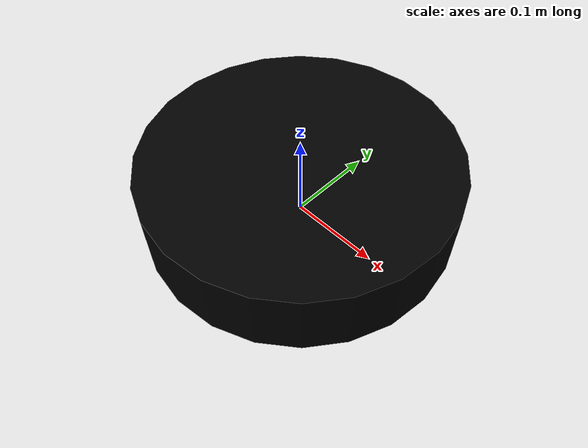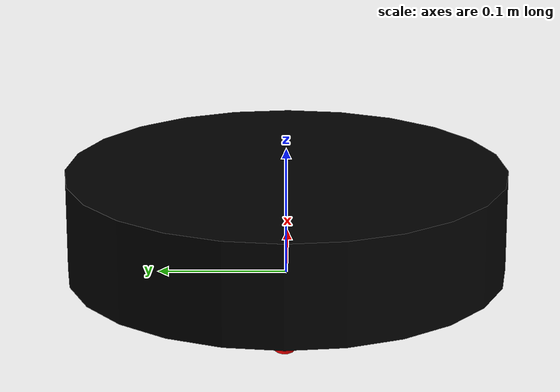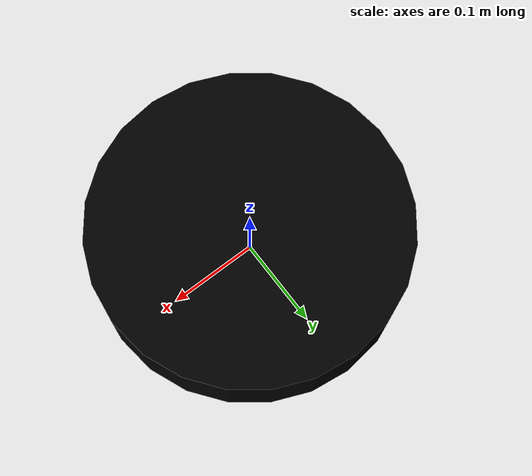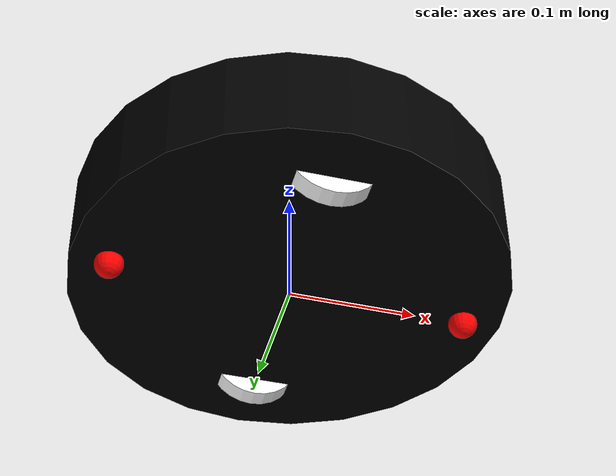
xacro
<?xml version="1.0"?>
<robot xmlns:xacro="http://www.ros.org/wiki/xacro">

    <xacro:include filename="inertial_macros.xacro"/>

    <material name="black">
        <color rgba="0 0 0 1"/>
    </material>

    <material name="white">
        <color rgba="1 1 1 1"/>
    </material>

    <material name="red">
        <color rgba="1 0 0 1"/>
    </material>

    <material name="green">
        <color rgba="0 1 0 1"/>
    </material>

    <xacro:property name="wheel_radius" value="0.035"/>

    <!-- BASE LINK -->
    <link name="base_link">
    </link>

    <!-- BASE_FOOTPRINT LINK -->
    <joint name="base_footprint_joint" type="fixed">
        <parent link="base_link"/>
        <child link="base_footprint"/>
        <origin rpy="0 0 0" xyz="0 0 0"/>
    </joint>

    <link name="base_footprint">
    </link>

    <!-- CHASSIS LINK -->
    <joint name="chassis_joint" type="fixed">
        <parent link="base_link"/>
        <child link="chassis"/>
        <origin rpy="0 0 0" xyz="0 0 0"/>
    </joint>

    <link name="chassis">
        <visual>
          <origin rpy="0 0 0" xyz="0 0 0.043"/>
          <geometry>
            <cylinder length="0.08" radius="0.171"/>
          </geometry>
          <material name="black"/>
        </visual>
        <collision>
          <origin rpy="0 0 0" xyz="0 0 0.043"/>
          <geometry>
            <cylinder length="0.08" radius="0.171"/>
          </geometry>
        </collision>
        <xacro:inertial_cylinder mass="3.6" length="0.08" radius="0.171">
            <origin rpy="0 0 0" xyz="0 0 0.043"/>
        </xacro:inertial_cylinder>
    </link>

    <gazebo reference="chassis">
        <material>Gazebo/Black</material>
    </gazebo>

    <!-- LEFT WHEEL LINK -->

    <joint name="left_wheel_joint" type="continuous">
        <parent link="base_link"/>
        <child link="left_wheel"/>
        <origin rpy="-${pi/2} 0 0" xyz="0 0.12 ${wheel_radius - 0.0114}"/>
        <axis xyz="0 0 1"/>
    </joint>

    <link name="left_wheel">
        <visual>
            <geometry>
                <cylinder length="0.0147" radius="${wheel_radius}"/>
            </geometry>
            <material name="white"/>
        </visual>
        <collision>
            <geometry>
                <cylinder length="0.0147" radius="${wheel_radius}"/>
            </geometry>
        </collision>
        <xacro:inertial_cylinder mass="0.1" length="0.0147" radius="${wheel_radius}">
            <origin rpy="0 0 0" xyz="0 0 0"/>
        </xacro:inertial_cylinder>
    </link>
    <gazebo reference="left_wheel">
        <material>Gazebo/White</material>
    </gazebo>

    <!-- RIGHT WHEEL LINK -->
    <joint name="right_wheel_joint" type="continuous">
        <parent link="base_link"/>
        <child link="right_wheel"/>
        <origin rpy="${pi/2} 0 0" xyz="0 -0.12 ${wheel_radius - 0.0114}"/>
        <axis xyz="0 0 -1"/>
    </joint>

    <link name="right_wheel">
        <visual>
            <geometry>
                <cylinder length="0.0147" radius="${wheel_radius}"/>
            </geometry>
            <material name="white"/>
        </visual>
        <collision>
            <geometry>
                <cylinder length="0.0147" radius="${wheel_radius}"/>
            </geometry>
        </collision>
        <xacro:inertial_cylinder mass="0.1" length="0.0147" radius="${wheel_radius}">
            <origin rpy="0 0 0" xyz="0 0 0"/>
        </xacro:inertial_cylinder>
    </link>
    <gazebo reference="right_wheel">
        <material>Gazebo/White</material>
    </gazebo>

    <!-- FRONT CASTER WHEEL LINK -->
    <joint name="caster_wheel_joint" type="fixed">
        <parent link="chassis"/>
        <child link="caster_wheel"/>
        <origin xyz="0.14 0 0"/>
    </joint>

    <link name="caster_wheel">
        <visual>
            <geometry>
                <sphere radius="0.0114"/>
            </geometry>
            <material name="red"/>
        </visual>
        <collision>
            <geometry>
                <sphere radius="0.0114"/>
            </geometry>
        </collision>
        <xacro:inertial_sphere mass="0.1" radius="0.0114">
            <origin rpy="0 0 0" xyz="0 0 0"/>
        </xacro:inertial_sphere>
    </link>

    <gazebo reference="caster_wheel">
        <material>Gazebo/Red</material>
        <mu1 value="0.001"/>
        <mu2 value="0.001"/>
    </gazebo>

    <!-- BACK CASTER WHEEL LINK (Real robot does not have this, only for simulation purposes) -->
    <joint name="back_caster_wheel_joint" type="fixed">
        <parent link="chassis"/>
        <child link="back_caster_wheel"/>
        <origin xyz="-0.14 0 0"/>
    </joint>

    <link name="back_caster_wheel">
        <visual>
            <geometry>
                <sphere radius="0.0114"/>
            </geometry>
            <material name="red"/>
        </visual>
        <collision>
            <geometry>
                <sphere radius="0.0114"/>
            </geometry>
        </collision>
        <xacro:inertial_sphere mass="0.1" radius="0.0114">
            <origin rpy="0 0 0" xyz="0 0 0"/>
        </xacro:inertial_sphere>
    </link>

    <gazebo reference="back_caster_wheel">
        <material>Gazebo/Red</material>
        <mu1 value="0.001"/>
        <mu2 value="0.001"/>
    </gazebo>

</robot>
